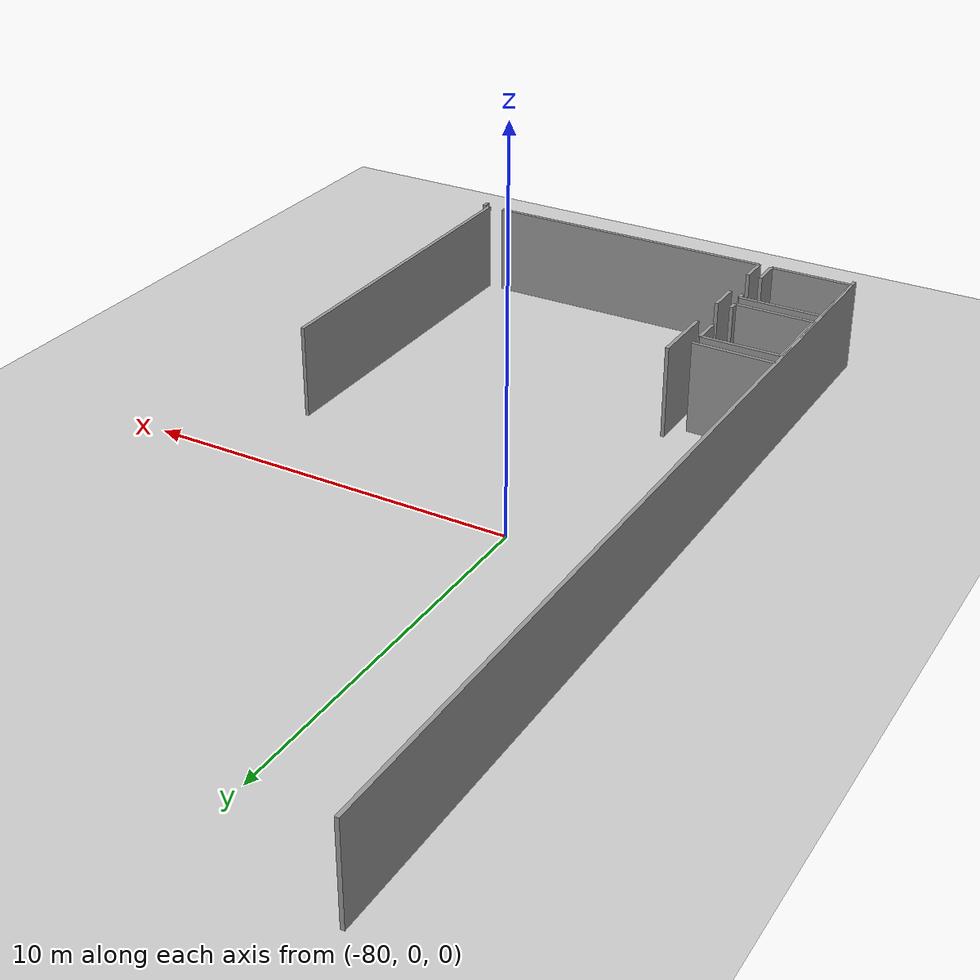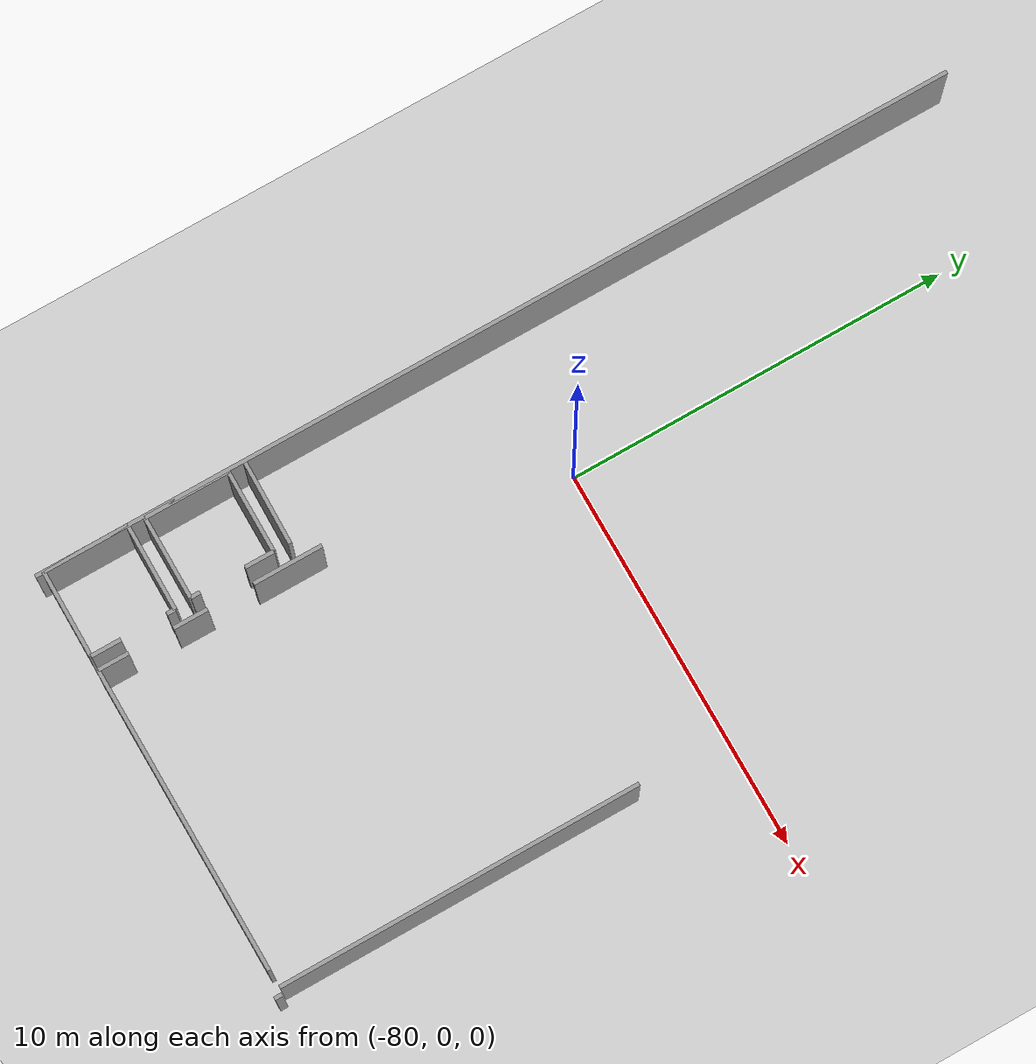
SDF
<sdf version="1.6">
 <world name="default">
  <model name="ground_plane">
   <static>1</static>
   <link name="link">
    <collision name="collision">
     <geometry><plane><normal>0 0 1</normal><size>100 100</size></plane></geometry>
     <surface><friction><ode><mu>100</mu><mu2>50</mu2></ode></friction></surface>
    </collision>
    <visual name="visual">
     <cast_shadows>0</cast_shadows>
     <geometry><plane><normal>0 0 1</normal><size>100 100</size></plane></geometry>
     <material>
      <script><uri>file://media/materials/scripts/gazebo.material</uri><name>Gazebo/Grey</name></script>
     </material>
    </visual>
   </link>
  </model>
  <model name="0510045906_A_40_1_104">
   <static>1</static>
   <link name="Wall_30">
    <collision name="Wall_30_Collision">
     <geometry><box><size>0.795302332963 0.1 2.5</size></box></geometry>
     <pose>0.397651166482 0 1.25 0 0 0</pose>
    </collision>
    <visual name="Wall_30_Visual">
     <pose>0.397651166482 0 1.25 0 0 0</pose>
     <geometry><box><size>0.795302332963 0.1 2.5</size></box></geometry>
     <material>
      <script><uri>file://media/materials/scripts/gazebo.material</uri><name>Gazebo/Grey</name></script>
      <ambient>1 1 1 1</ambient>
     </material>
    </visual>
    <pose>2.63018568481 -24.15591176 0 0 0 1.57079632679</pose>
   </link>
   <link name="Wall_31">
    <collision name="Wall_31_Collision">
     <geometry><box><size>0.900174575464 0.1 2.5</size></box></geometry>
     <pose>0.450087287732 0 1.25 0 0 0</pose>
    </collision>
    <visual name="Wall_31_Visual">
     <pose>0.450087287732 0 1.25 0 0 0</pose>
     <geometry><box><size>0.900174575464 0.1 2.5</size></box></geometry>
     <material>
      <script><uri>file://media/materials/scripts/gazebo.material</uri><name>Gazebo/Grey</name></script>
      <ambient>1 1 1 1</ambient>
     </material>
    </visual>
    <pose>2.63018568481 -22.1841612442 0 0 0 1.57079632679</pose>
   </link>
   <link name="Wall_32">
    <collision name="Wall_32_Collision">
     <geometry><box><size>1.81126805269 0.1 2.5</size></box></geometry>
     <pose>0.905634026345 0 1.25 0 0 0</pose>
    </collision>
    <visual name="Wall_32_Visual">
     <pose>0.905634026345 0 1.25 0 0 0</pose>
     <geometry><box><size>1.81126805269 0.1 2.5</size></box></geometry>
     <material>
      <script><uri>file://media/materials/scripts/gazebo.material</uri><name>Gazebo/Grey</name></script>
      <ambient>1 1 1 1</ambient>
     </material>
    </visual>
    <pose>2.63018568481 -20.0836692588 0 0 0 1.57079632679</pose>
   </link>
   <link name="Wall_39">
    <collision name="Wall_39_Collision">
     <geometry><box><size>7.97124442709 0.1 2.5</size></box></geometry>
     <pose>3.98562221354 0 1.25 0 0 0</pose>
    </collision>
    <visual name="Wall_39_Visual">
     <pose>3.98562221354 0 1.25 0 0 0</pose>
     <geometry><box><size>7.97124442709 0.1 2.5</size></box></geometry>
     <material>
      <script><uri>file://media/materials/scripts/gazebo.material</uri><name>Gazebo/Grey</name></script>
      <ambient>1 1 1 1</ambient>
     </material>
    </visual>
    <pose>10.6012378987 -24.1005554674 0 0 0 -3.13464809956</pose>
   </link>
   <link name="Wall_49">
    <collision name="Wall_49_Collision">
     <geometry><box><size>2.20675752621 0.1 2.5</size></box></geometry>
     <pose>1.1033787631 0 1.25 0 0 0</pose>
    </collision>
    <visual name="Wall_49_Visual">
     <pose>1.1033787631 0 1.25 0 0 0</pose>
     <geometry><box><size>2.20675752621 0.1 2.5</size></box></geometry>
     <material>
      <script><uri>file://media/materials/scripts/gazebo.material</uri><name>Gazebo/Grey</name></script>
      <ambient>1 1 1 1</ambient>
     </material>
    </visual>
    <pose>2.22517060784 -18.8884304079 0 0 0 3.13100616762</pose>
   </link>
   <link name="Wall_50">
    <collision name="Wall_50_Collision">
     <geometry><box><size>2.19673067767 0.1 2.5</size></box></geometry>
     <pose>1.09836533884 0 1.25 0 0 0</pose>
    </collision>
    <visual name="Wall_50_Visual">
     <pose>1.09836533884 0 1.25 0 0 0</pose>
     <geometry><box><size>2.19673067767 0.1 2.5</size></box></geometry>
     <material>
      <script><uri>file://media/materials/scripts/gazebo.material</uri><name>Gazebo/Grey</name></script>
      <ambient>1 1 1 1</ambient>
     </material>
    </visual>
    <pose>0.0421520393588 -21.5049039835 0 0 0 1.57079632679</pose>
   </link>
   <link name="Wall_51">
    <collision name="Wall_51_Collision">
     <geometry><box><size>2.15864148548 0.1 2.5</size></box></geometry>
     <pose>1.07932074274 0 1.25 0 0 0</pose>
    </collision>
    <visual name="Wall_51_Visual">
     <pose>1.07932074274 0 1.25 0 0 0</pose>
     <geometry><box><size>2.15864148548 0.1 2.5</size></box></geometry>
     <material>
      <script><uri>file://media/materials/scripts/gazebo.material</uri><name>Gazebo/Grey</name></script>
      <ambient>1 1 1 1</ambient>
     </material>
    </visual>
    <pose>0.0421520393588 -19.3081733058 0 0 0 0.0</pose>
   </link>
   <link name="Wall_52">
    <collision name="Wall_52_Collision">
     <geometry><box><size>0.757467068719 0.1 2.5</size></box></geometry>
     <pose>0.37873353436 0 1.25 0 0 0</pose>
    </collision>
    <visual name="Wall_52_Visual">
     <pose>0.37873353436 0 1.25 0 0 0</pose>
     <geometry><box><size>0.757467068719 0.1 2.5</size></box></geometry>
     <material>
      <script><uri>file://media/materials/scripts/gazebo.material</uri><name>Gazebo/Grey</name></script>
      <ambient>1 1 1 1</ambient>
     </material>
    </visual>
    <pose>2.20079352484 -19.3081733058 0 0 0 -1.57079632679</pose>
   </link>
   <link name="Wall_53">
    <collision name="Wall_53_Collision">
     <geometry><box><size>0.252404380257 0.1 2.5</size></box></geometry>
     <pose>0.126202190129 0 1.25 0 0 0</pose>
    </collision>
    <visual name="Wall_53_Visual">
     <pose>0.126202190129 0 1.25 0 0 0</pose>
     <geometry><box><size>0.252404380257 0.1 2.5</size></box></geometry>
     <material>
      <script><uri>file://media/materials/scripts/gazebo.material</uri><name>Gazebo/Grey</name></script>
      <ambient>1 1 1 1</ambient>
     </material>
    </visual>
    <pose>2.20079352484 -21.2474210443 0 0 0 -1.57079632679</pose>
   </link>
   <link name="Wall_54">
    <collision name="Wall_54_Collision">
     <geometry><box><size>2.15864745954 0.1 2.5</size></box></geometry>
     <pose>1.07932372977 0 1.25 0 0 0</pose>
    </collision>
    <visual name="Wall_54_Visual">
     <pose>1.07932372977 0 1.25 0 0 0</pose>
     <geometry><box><size>2.15864745954 0.1 2.5</size></box></geometry>
     <material>
      <script><uri>file://media/materials/scripts/gazebo.material</uri><name>Gazebo/Grey</name></script>
      <ambient>1 1 1 1</ambient>
     </material>
    </visual>
    <pose>2.20079352484 -21.4998254245 0 0 0 -3.13923999354</pose>
   </link>
   <link name="Wall_55">
    <collision name="Wall_55_Collision">
     <geometry><box><size>2.20663386764 0.1 2.5</size></box></geometry>
     <pose>1.10331693382 0 1.25 0 0 0</pose>
    </collision>
    <visual name="Wall_55_Visual">
     <pose>1.10331693382 0 1.25 0 0 0</pose>
     <geometry><box><size>2.20663386764 0.1 2.5</size></box></geometry>
     <material>
      <script><uri>file://media/materials/scripts/gazebo.material</uri><name>Gazebo/Grey</name></script>
      <ambient>1 1 1 1</ambient>
     </material>
    </visual>
    <pose>0.00177749563562 -24.1439771465 0 0 0 1.57079632679</pose>
   </link>
   <link name="Wall_56">
    <collision name="Wall_56_Collision">
     <geometry><box><size>2.26478336772 0.1 2.5</size></box></geometry>
     <pose>1.13239168386 0 1.25 0 0 0</pose>
    </collision>
    <visual name="Wall_56_Visual">
     <pose>1.13239168386 0 1.25 0 0 0</pose>
     <geometry><box><size>2.26478336772 0.1 2.5</size></box></geometry>
     <material>
      <script><uri>file://media/materials/scripts/gazebo.material</uri><name>Gazebo/Grey</name></script>
      <ambient>1 1 1 1</ambient>
     </material>
    </visual>
    <pose>0.00177749563562 -21.9373432788 0 0 0 0.0</pose>
   </link>
   <link name="Wall_57">
    <collision name="Wall_57_Collision">
     <geometry><box><size>0.22117124266 0.1 2.5</size></box></geometry>
     <pose>0.11058562133 0 1.25 0 0 0</pose>
    </collision>
    <visual name="Wall_57_Visual">
     <pose>0.11058562133 0 1.25 0 0 0</pose>
     <geometry><box><size>0.22117124266 0.1 2.5</size></box></geometry>
     <material>
      <script><uri>file://media/materials/scripts/gazebo.material</uri><name>Gazebo/Grey</name></script>
      <ambient>1 1 1 1</ambient>
     </material>
    </visual>
    <pose>2.26656086336 -21.9373432788 0 0 0 -1.57079632679</pose>
   </link>
   <link name="Wall_58">
    <collision name="Wall_58_Collision">
     <geometry><box><size>0.783875575306 0.1 2.5</size></box></geometry>
     <pose>0.391937787653 0 1.25 0 0 0</pose>
    </collision>
    <visual name="Wall_58_Visual">
     <pose>0.391937787653 0 1.25 0 0 0</pose>
     <geometry><box><size>0.783875575306 0.1 2.5</size></box></geometry>
     <material>
      <script><uri>file://media/materials/scripts/gazebo.material</uri><name>Gazebo/Grey</name></script>
      <ambient>1 1 1 1</ambient>
     </material>
    </visual>
    <pose>2.26656086336 -23.3601015712 0 0 0 -1.57079632679</pose>
   </link>
   <link name="Wall_59">
    <collision name="Wall_59_Collision">
     <geometry><box><size>2.26478336772 0.1 2.5</size></box></geometry>
     <pose>1.13239168386 0 1.25 0 0 0</pose>
    </collision>
    <visual name="Wall_59_Visual">
     <pose>1.13239168386 0 1.25 0 0 0</pose>
     <geometry><box><size>2.26478336772 0.1 2.5</size></box></geometry>
     <material>
      <script><uri>file://media/materials/scripts/gazebo.material</uri><name>Gazebo/Grey</name></script>
      <ambient>1 1 1 1</ambient>
     </material>
    </visual>
    <pose>2.26656086336 -24.1439771465 0 0 0 3.14159265359</pose>
   </link>
   <link name="Wall_60">
    <collision name="Wall_60_Collision">
     <geometry><box><size>9.40219012855 0.1 2.5</size></box></geometry>
     <pose>4.70109506428 0 1.25 0 0 0</pose>
    </collision>
    <visual name="Wall_60_Visual">
     <pose>4.70109506428 0 1.25 0 0 0</pose>
     <geometry><box><size>9.40219012855 0.1 2.5</size></box></geometry>
     <material>
      <script><uri>file://media/materials/scripts/gazebo.material</uri><name>Gazebo/Grey</name></script>
      <ambient>1 1 1 1</ambient>
     </material>
    </visual>
    <pose>11.0506903666 -24.0802412316 0 0 0 1.57079632679</pose>
   </link>
   <link name="Wall_66">
    <collision name="Wall_66_Collision">
     <geometry><box><size>0.196794159657 0.1 2.5</size></box></geometry>
     <pose>0.0983970798286 0 1.25 0 0 0</pose>
    </collision>
    <visual name="Wall_66_Visual">
     <pose>0.0983970798286 0 1.25 0 0 0</pose>
     <geometry><box><size>0.196794159657 0.1 2.5</size></box></geometry>
     <material>
      <script><uri>file://media/materials/scripts/gazebo.material</uri><name>Gazebo/Grey</name></script>
      <ambient>1 1 1 1</ambient>
     </material>
    </visual>
    <pose>11.2236152992 -24.307506745 0 0 0 1.57079632679</pose>
   </link>
   <link name="Wall_218">
    <collision name="Wall_218_Collision">
     <geometry><box><size>24.3648944612 0.1 2.5</size></box></geometry>
     <pose>12.1824472306 0 1.25 0 0 0</pose>
    </collision>
    <visual name="Wall_218_Visual">
     <pose>12.1824472306 0 1.25 0 0 0</pose>
     <geometry><box><size>24.3648944612 0.1 2.5</size></box></geometry>
     <material>
      <script><uri>file://media/materials/scripts/gazebo.material</uri><name>Gazebo/Grey</name></script>
      <ambient>1 1 1 1</ambient>
     </material>
    </visual>
    <pose>0.0 -24.3648944612 0 0 0 1.57079632679</pose>
   </link>
   <pose>-83.7 12.1648944612 0 0 0 0</pose>
  </model>
 </world>
</sdf>
